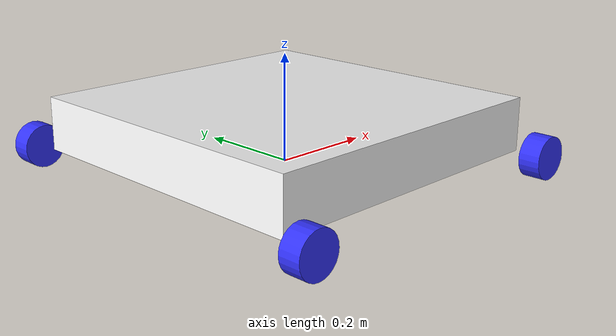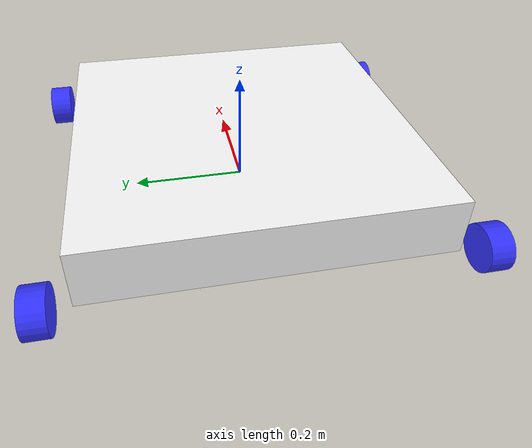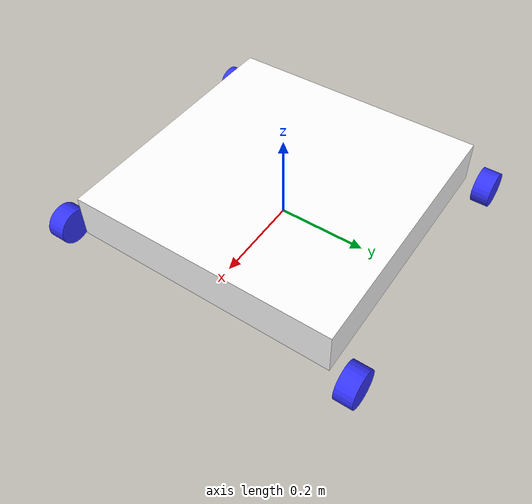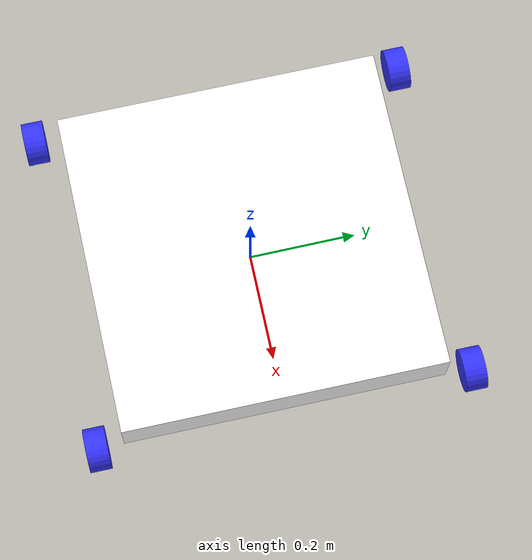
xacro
<?xml version="1.0"?>
<robot xmlns:xacro="http://www.ros.org/wiki/xacro">
    <xacro:include filename="inertial_macros.xacro" />
    <material name="white">
        <color rgba="1 1 1 1"/>
    </material>

    <material name="orange">
        <color rgba="1 0.3 0.1 1"/>
    </material>

    <material name="blue">
        <color rgba="0.2 0.2 1 1"/>
    </material>

    <material name="black">
        <color rgba="0 0 0 1"/>
    </material>

    <!-- BASE LINK -->
    <link name="base_link">
    </link>

    <!-- CHASSIS LINK -->

    <joint name="chassis_joint" type="fixed">
        <parent link="base_link"/>
        <child link="chassis"/>
        <origin xyz="0 0 0.07"/>
    </joint>

    <link name="chassis">
        <visual>
            <origin xyz="0.0 0 0" rpy="0 0 0"/>
            <geometry>
                <box size="0.6 0.6 0.1"/>
            </geometry>
            <material name="white"/>
        </visual>
        <collision>
            <origin xyz="0 0 0" rpy="0 0 0"/>
            <geometry>
                <box size="0.6 0.6 0.1"/>
            </geometry>
        </collision>
        <xacro:inertial_box mass="0.5" x="0.6" y="0.6" z="0.1">
            <origin xyz="0 0 0.05" rpy="0 0 0"/>
        </xacro:inertial_box>
    </link>

    <gazebo reference="chassis">
        <material>Gazebo/Purple</material>
    </gazebo>

    <!-- LEFT WHEEL -->

    <joint name="left_wheel_joint" type="continuous">
        <parent link="base_link"/>
        <child link="left_wheel"/>
        <origin xyz="-0.3 0.35 0.02" rpy="${pi/2} 0 0"/>
        <axis xyz="0 0 -1"/>
    </joint>

    <link name="left_wheel">
        <visual>
            <geometry>
                <cylinder length="0.04" radius="0.04" />
            </geometry>
            <material name="blue"/>
        </visual>

        <collision>
            <geometry>
                <cylinder length="0.04" radius="0.04" />
            </geometry>
        </collision>

        <xacro:inertial_cylinder mass="0.1" length="0.05" radius="0.04">
            <origin xyz="0 0 0" rpy="0 0 0"/>
        </xacro:inertial_cylinder>
    </link>

    <gazebo reference="left_wheel">
        <material>Gazebo/Yellow</material>
    </gazebo>

    <!-- RIGHT WHEEL -->

    <joint name="right_wheel_joint" type="continuous">
        <parent link="base_link"/>
        <child link="right_wheel"/>
        <origin xyz="-0.3 -0.35 0.02" rpy="${pi/2} 0 0"/>
        <axis xyz="0 0 -1"/>
    </joint>

    <link name="right_wheel">
        <visual>
            <geometry>
                <cylinder length="0.04" radius="0.04" />
            </geometry>
            <material name="blue"/>
        </visual>
        <collision>
            <geometry>
                <cylinder length="0.04" radius="0.04" />
            </geometry>
        </collision>
        <xacro:inertial_cylinder mass="0.1" length="0.05" radius="0.04">
            <origin xyz="0 0 0" rpy="0 0 0"/>
        </xacro:inertial_cylinder>
    </link>

    <gazebo reference="right_wheel">
        <material>Gazebo/Yellow</material>
    </gazebo>

    <!-- DUMMY LEFT WHEEL -->

    <joint name="dummy_left_joint" type="continuous">
        <parent link="base_link"/>
        <child link="dummy_left"/>
        <origin xyz="0.3 0.35 0.02" rpy="-${pi/2} 0 0"/>
        <axis xyz="0 0 1"/>
    </joint>

    <link name="dummy_left">
        <visual>
            <geometry>
                <cylinder length="0.04" radius="0.04" />
            </geometry>
            <material name="blue"/>
        </visual>

        <collision>
            <geometry>
                <cylinder length="0.04" radius="0.04" />
            </geometry>
        </collision>

        <xacro:inertial_cylinder mass="0.1" length="0.05" radius="0.04">
            <origin xyz="0 0 0" rpy="0 0 0"/>
        </xacro:inertial_cylinder>
    </link>

    <gazebo reference="dummy_left">
        <material>Gazebo/Blue</material>

        <mu1 value="0.000"/>
        <mu2 value="0.000"/>

    </gazebo>

    <!-- DUMMY RIGHT WHEEL -->

    <joint name="dummy_right_joint" type="continuous">
        <parent link="base_link"/>
        <child link="dummy_right"/>
        <origin xyz="0.3 -0.35 0.02" rpy="-${pi/2} 0 0"/>
        <axis xyz="0 0 1"/>
    </joint>

    <link name="dummy_right">
        <visual>
            <geometry>
                <cylinder length="0.04" radius="0.04" />
            </geometry>
            <material name="blue"/>
        </visual>
        <collision>
            <geometry>
                <cylinder length="0.04" radius="0.04" />
            </geometry>
        </collision>
        <xacro:inertial_cylinder mass="0.1" length="0.05" radius="0.04">
            <origin xyz="0 0 0" rpy="0 0 0"/>
        </xacro:inertial_cylinder>
    </link>

    <gazebo reference="dummy_right">
        <material>Gazebo/Blue</material>

        <mu1 value="0.000"/>
        <mu2 value="0.000"/>

    </gazebo>

    <!-- CASTER WHEEL -->

</robot>

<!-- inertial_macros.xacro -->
<robot xmlns:xacro="http://www.ros.org/wiki/xacro" >

    <!-- Specify some standard inertial calculations https://en.wikipedia.org/wiki/List_of_moments_of_inertia -->

    <xacro:macro name="inertial_sphere" params="mass radius *origin">
        <inertial>
            <xacro:insert_block name="origin"/>
            <mass value="${mass}" />
            <inertia ixx="${(2/5) * mass * (radius*radius)}" ixy="0.0" ixz="0.0"
                    iyy="${(2/5) * mass * (radius*radius)}" iyz="0.0"
                    izz="${(2/5) * mass * (radius*radius)}" />
        </inertial>
    </xacro:macro>

    <xacro:macro name="inertial_box" params="mass x y z *origin">
        <inertial>
            <xacro:insert_block name="origin"/>
            <mass value="${mass}" />
            <inertia ixx="${(1/12) * mass * (y*y+z*z)}" ixy="0.0" ixz="0.0"
                    iyy="${(1/12) * mass * (x*x+z*z)}" iyz="0.0"
                    izz="${(1/12) * mass * (x*x+y*y)}" />
        </inertial>
    </xacro:macro>

    <xacro:macro name="inertial_cylinder" params="mass length radius *origin">
        <inertial>
            <xacro:insert_block name="origin"/>
            <mass value="${mass}" />
            <inertia ixx="${(1/12) * mass * (3*radius*radius + length*length)}" ixy="0.0" ixz="0.0"
                    iyy="${(1/12) * mass * (3*radius*radius + length*length)}" iyz="0.0"
                    izz="${(1/2) * mass * (radius*radius)}" />
        </inertial>
    </xacro:macro>

</robot>
